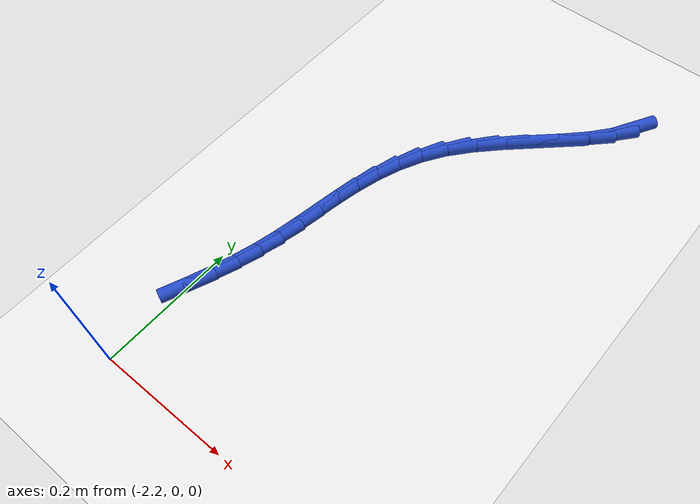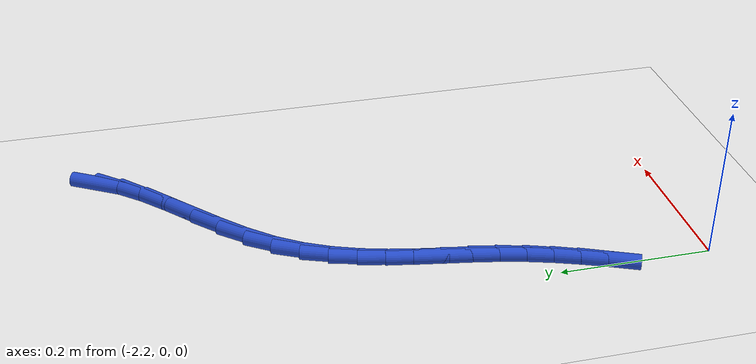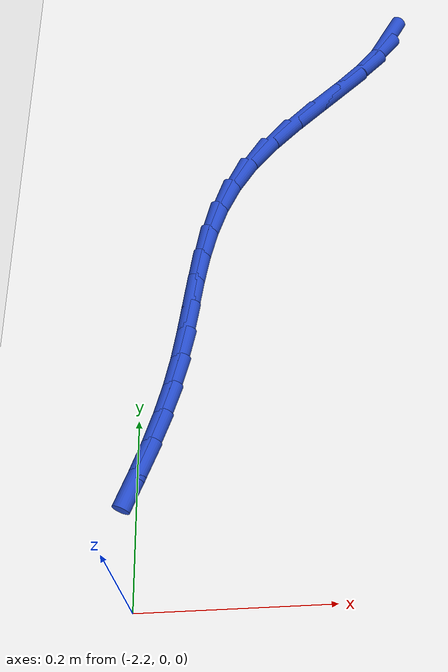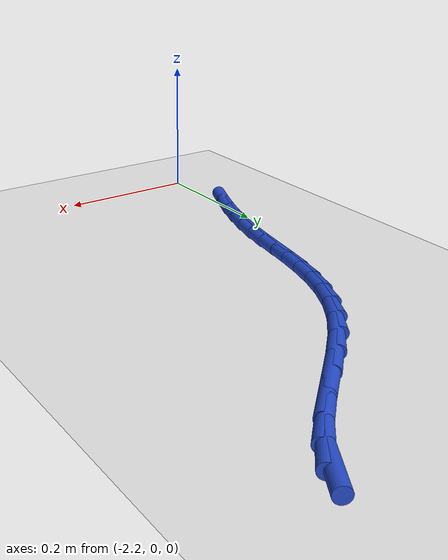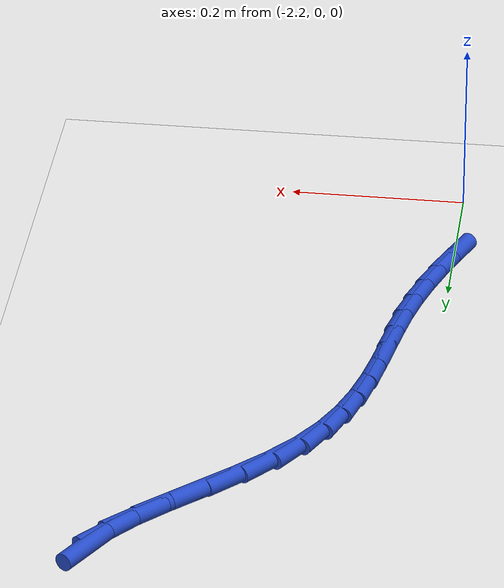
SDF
<sdf version="1.6">
 <world name="default">
  <model name="ground_plane">
   <static>1</static>
   <link name="link">
    <collision name="collision">
     <geometry><plane><normal>0 0 1</normal><size>100 100</size></plane></geometry>
     <surface><friction><ode><mu>100</mu><mu2>50</mu2></ode></friction></surface>
    </collision>
    <visual name="visual">
     <cast_shadows>0</cast_shadows>
     <geometry><plane><normal>0 0 1</normal><size>100 100</size></plane></geometry>
     <material>
      <script><uri>file://media/materials/scripts/gazebo.material</uri><name>Gazebo/WhiteGlow</name></script>
     </material>
    </visual>
   </link>
  </model>
  <model name="line">
   <link name="link_96">
    <pose>-1.875120994122851 0.7476467648307691 0.01 0 1.57 1.038364895358983</pose>
    <collision name="collision">
     <geometry><cylinder><radius>0.01</radius><length>0.08</length></cylinder></geometry>
    </collision>
    <visual name="visual">
     <material>
      <script><name>Gazebo/Blue</name><uri>file://media/materials/scripts/gazebo.material</uri></script>
     </material>
     <geometry><cylinder><radius>0.01</radius><length>0.08</length></cylinder></geometry>
    </visual>
   </link>
   <link name="link_97">
    <pose>-1.8914928641373094 0.7198595813070077 0.01 0 1.57 0.8663496463090009</pose>
    <collision name="collision">
     <geometry><cylinder><radius>0.01</radius><length>0.08</length></cylinder></geometry>
    </collision>
    <visual name="visual">
     <material>
      <script><name>Gazebo/Blue</name><uri>file://media/materials/scripts/gazebo.material</uri></script>
     </material>
     <geometry><cylinder><radius>0.01</radius><length>0.08</length></cylinder></geometry>
    </visual>
   </link>
   <link name="link_98">
    <pose>-1.915662395129826 0.6914221084558381 0.01 0 1.57 0.7773927345330431</pose>
    <collision name="collision">
     <geometry><cylinder><radius>0.01</radius><length>0.08</length></cylinder></geometry>
    </collision>
    <visual name="visual">
     <material>
      <script><name>Gazebo/Blue</name><uri>file://media/materials/scripts/gazebo.material</uri></script>
     </material>
     <geometry><cylinder><radius>0.01</radius><length>0.08</length></cylinder></geometry>
    </visual>
   </link>
   <link name="link_99">
    <pose>-1.9452538764498681 0.6623006593646349 0.01 0 1.57 0.740633743938618</pose>
    <collision name="collision">
     <geometry><cylinder><radius>0.01</radius><length>0.08</length></cylinder></geometry>
    </collision>
    <visual name="visual">
     <material>
      <script><name>Gazebo/Blue</name><uri>file://media/materials/scripts/gazebo.material</uri></script>
     </material>
     <geometry><cylinder><radius>0.01</radius><length>0.08</length></cylinder></geometry>
    </visual>
   </link>
   <link name="link_100">
    <pose>-1.977891597446904 0.6324615471207743 0.01 0 1.57 0.7428910371266862</pose>
    <collision name="collision">
     <geometry><cylinder><radius>0.01</radius><length>0.08</length></cylinder></geometry>
    </collision>
    <visual name="visual">
     <material>
      <script><name>Gazebo/Blue</name><uri>file://media/materials/scripts/gazebo.material</uri></script>
     </material>
     <geometry><cylinder><radius>0.01</radius><length>0.08</length></cylinder></geometry>
    </visual>
   </link>
   <link name="link_101">
    <pose>-2.011199847470402 0.6018710848116309 0.01 0 1.57 0.7817847417161924</pose>
    <collision name="collision">
     <geometry><cylinder><radius>0.01</radius><length>0.08</length></cylinder></geometry>
    </collision>
    <visual name="visual">
     <material>
      <script><name>Gazebo/Blue</name><uri>file://media/materials/scripts/gazebo.material</uri></script>
     </material>
     <geometry><cylinder><radius>0.01</radius><length>0.08</length></cylinder></geometry>
    </visual>
   </link>
   <link name="link_102">
    <pose>-2.0428029158698284 0.5704955855245806 0.01 0 1.57 0.8634534186529537</pose>
    <collision name="collision">
     <geometry><cylinder><radius>0.01</radius><length>0.08</length></cylinder></geometry>
    </collision>
    <visual name="visual">
     <material>
      <script><name>Gazebo/Blue</name><uri>file://media/materials/scripts/gazebo.material</uri></script>
     </material>
     <geometry><cylinder><radius>0.01</radius><length>0.08</length></cylinder></geometry>
    </visual>
   </link>
   <link name="link_103">
    <pose>-2.0703263045468017 0.5383014398882247 0.01 0 1.57 0.9855581753384519</pose>
    <collision name="collision">
     <geometry><cylinder><radius>0.01</radius><length>0.08</length></cylinder></geometry>
    </collision>
    <visual name="visual">
     <material>
      <script><name>Gazebo/Blue</name><uri>file://media/materials/scripts/gazebo.material</uri></script>
     </material>
     <geometry><cylinder><radius>0.01</radius><length>0.08</length></cylinder></geometry>
    </visual>
   </link>
   <link name="link_104">
    <pose>-2.0921917798903236 0.5053059586708104 0.01 0 1.57 1.1076462850028563</pose>
    <collision name="collision">
     <geometry><cylinder><radius>0.01</radius><length>0.08</length></cylinder></geometry>
    </collision>
    <visual name="visual">
     <material>
      <script><name>Gazebo/Blue</name><uri>file://media/materials/scripts/gazebo.material</uri></script>
     </material>
     <geometry><cylinder><radius>0.01</radius><length>0.08</length></cylinder></geometry>
    </visual>
   </link>
   <link name="link_105">
    <pose>-2.108991226742982 0.4716652290602959 0.01 0 1.57 1.2145564705403409</pose>
    <collision name="collision">
     <geometry><cylinder><radius>0.01</radius><length>0.08</length></cylinder></geometry>
    </collision>
    <visual name="visual">
     <material>
      <script><name>Gazebo/Blue</name><uri>file://media/materials/scripts/gazebo.material</uri></script>
     </material>
     <geometry><cylinder><radius>0.01</radius><length>0.08</length></cylinder></geometry>
    </visual>
   </link>
   <link name="link_106">
    <pose>-2.121682790252342 0.43755876014298156 0.01 0 1.57 1.300165383891962</pose>
    <collision name="collision">
     <geometry><cylinder><radius>0.01</radius><length>0.08</length></cylinder></geometry>
    </collision>
    <visual name="visual">
     <material>
      <script><name>Gazebo/Blue</name><uri>file://media/materials/scripts/gazebo.material</uri></script>
     </material>
     <geometry><cylinder><radius>0.01</radius><length>0.08</length></cylinder></geometry>
    </visual>
   </link>
   <link name="link_107">
    <pose>-2.1312246155659715 0.4031660610051668 0.01 0 1.57 1.3608811295295766</pose>
    <collision name="collision">
     <geometry><cylinder><radius>0.01</radius><length>0.08</length></cylinder></geometry>
    </collision>
    <visual name="visual">
     <material>
      <script><name>Gazebo/Blue</name><uri>file://media/materials/scripts/gazebo.material</uri></script>
     </material>
     <geometry><cylinder><radius>0.01</radius><length>0.08</length></cylinder></geometry>
    </visual>
   </link>
   <link name="link_108">
    <pose>-2.138574847831437 0.368666640733151 0.01 0 1.57 1.3949554178863441</pose>
    <collision name="collision">
     <geometry><cylinder><radius>0.01</radius><length>0.08</length></cylinder></geometry>
    </collision>
    <visual name="visual">
     <material>
      <script><name>Gazebo/Blue</name><uri>file://media/materials/scripts/gazebo.material</uri></script>
     </material>
     <geometry><cylinder><radius>0.01</radius><length>0.08</length></cylinder></geometry>
    </visual>
   </link>
   <link name="link_109">
    <pose>-2.1446916321963028 0.3342400084132344 0.01 0 1.57 1.401500654400175</pose>
    <collision name="collision">
     <geometry><cylinder><radius>0.01</radius><length>0.08</length></cylinder></geometry>
    </collision>
    <visual name="visual">
     <material>
      <script><name>Gazebo/Blue</name><uri>file://media/materials/scripts/gazebo.material</uri></script>
     </material>
     <geometry><cylinder><radius>0.01</radius><length>0.08</length></cylinder></geometry>
    </visual>
   </link>
   <link name="link_110">
    <pose>-2.150533113808138 0.3000656731317163 0.01 0 1.57 1.37979721307801</pose>
    <collision name="collision">
     <geometry><cylinder><radius>0.01</radius><length>0.08</length></cylinder></geometry>
    </collision>
    <visual name="visual">
     <material>
      <script><name>Gazebo/Blue</name><uri>file://media/materials/scripts/gazebo.material</uri></script>
     </material>
     <geometry><cylinder><radius>0.01</radius><length>0.08</length></cylinder></geometry>
    </visual>
   </link>
   <link name="link_111">
    <pose>-2.1570574378145078 0.266323143974897 0.01 0 1.57 1.3311417301438344</pose>
    <collision name="collision">
     <geometry><cylinder><radius>0.01</radius><length>0.08</length></cylinder></geometry>
    </collision>
    <visual name="visual">
     <material>
      <script><name>Gazebo/Blue</name><uri>file://media/materials/scripts/gazebo.material</uri></script>
     </material>
     <geometry><cylinder><radius>0.01</radius><length>0.08</length></cylinder></geometry>
    </visual>
   </link>
   <link name="link_112">
    <pose>-2.1651570648988367 0.2331755864070982 0.01 0 1.57 1.2769235476674423</pose>
    <collision name="collision">
     <geometry><cylinder><radius>0.01</radius><length>0.08</length></cylinder></geometry>
    </collision>
    <visual name="visual">
     <material>
      <script><name>Gazebo/Blue</name><uri>file://media/materials/scripts/gazebo.material</uri></script>
     </material>
     <geometry><cylinder><radius>0.01</radius><length>0.08</length></cylinder></geometry>
    </visual>
   </link>
   <link name="link_113">
    <pose>-2.175012834491741 0.20060910014507607 0.01 0 1.57 1.2308104295113362</pose>
    <collision name="collision">
     <geometry><cylinder><radius>0.01</radius><length>0.08</length></cylinder></geometry>
    </collision>
    <visual name="visual">
     <material>
      <script><name>Gazebo/Blue</name><uri>file://media/materials/scripts/gazebo.material</uri></script>
     </material>
     <geometry><cylinder><radius>0.01</radius><length>0.08</length></cylinder></geometry>
    </visual>
   </link>
   <link name="link_114">
    <pose>-2.1863700016778003 0.16850140271835362 0.01 0 1.57 1.1933203081087773</pose>
    <collision name="collision">
     <geometry><cylinder><radius>0.01</radius><length>0.08</length></cylinder></geometry>
    </collision>
    <visual name="visual">
     <material>
      <script><name>Gazebo/Blue</name><uri>file://media/materials/scripts/gazebo.material</uri></script>
     </material>
     <geometry><cylinder><radius>0.01</radius><length>0.08</length></cylinder></geometry>
    </visual>
   </link>
   <link name="link_115">
    <pose>-2.1989675491777545 0.1367286509655859 0.01 0 1.57 1.1645538459742766</pose>
    <collision name="collision">
     <geometry><cylinder><radius>0.01</radius><length>0.08</length></cylinder></geometry>
    </collision>
    <visual name="visual">
     <material>
      <script><name>Gazebo/Blue</name><uri>file://media/materials/scripts/gazebo.material</uri></script>
     </material>
     <geometry><cylinder><radius>0.01</radius><length>0.08</length></cylinder></geometry>
    </visual>
   </link>
  </model>
 </world>
</sdf>
